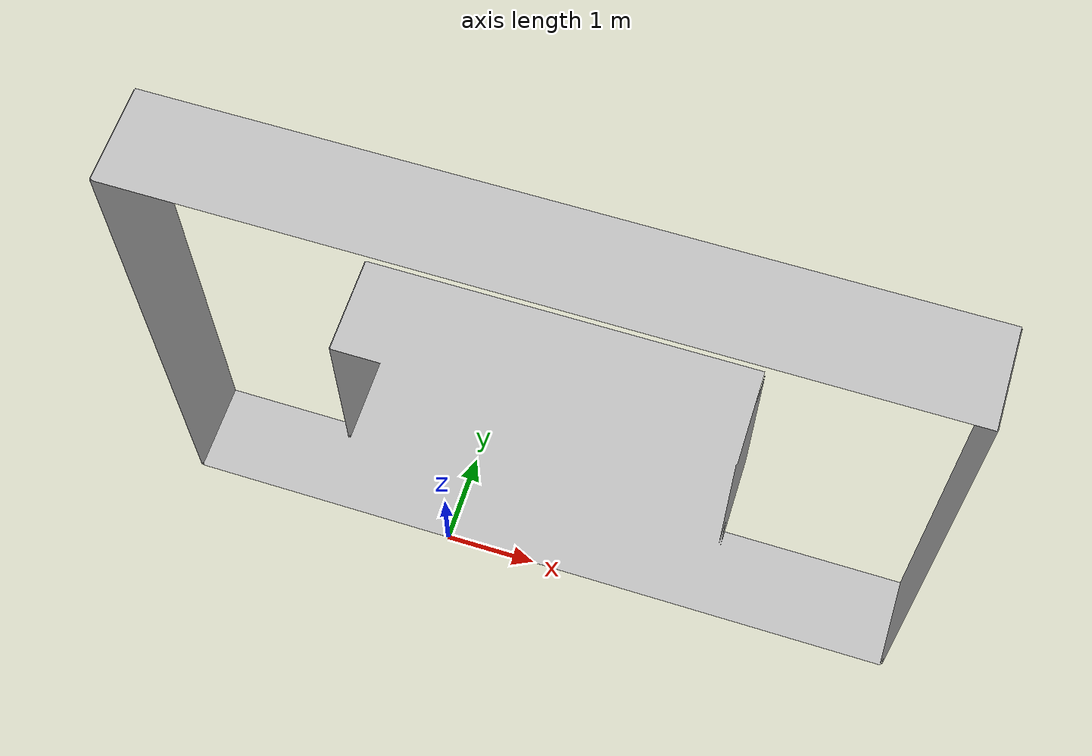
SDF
<?xml version="1.6" ?>
<sdf version="1.6">
  <model name="test_arena_1">
    <static>true</static>
    <link name="link">
      <visual name="visual">
        <geometry>
          <mesh>
            <uri>model://arena_2/meshes/arena_2.obj</uri>
          </mesh>
        </geometry>
      </visual>
      <collision name="collision">
        <geometry>
          <mesh>
            <uri>model://arena_2/meshes/arena_2.obj</uri>
          </mesh>
        </geometry>
      </collision>
    </link>
  </model>
</sdf>
